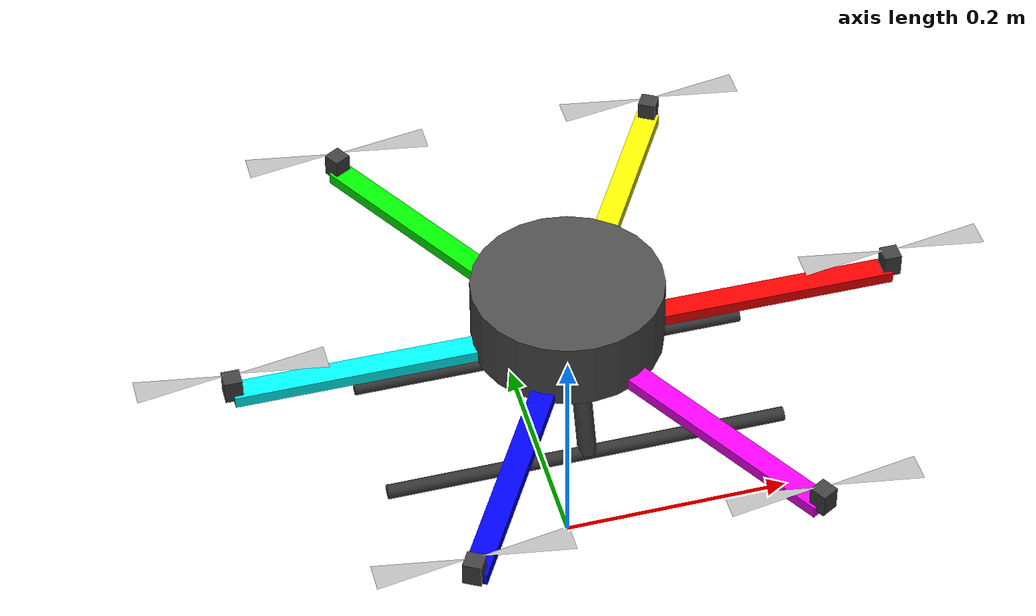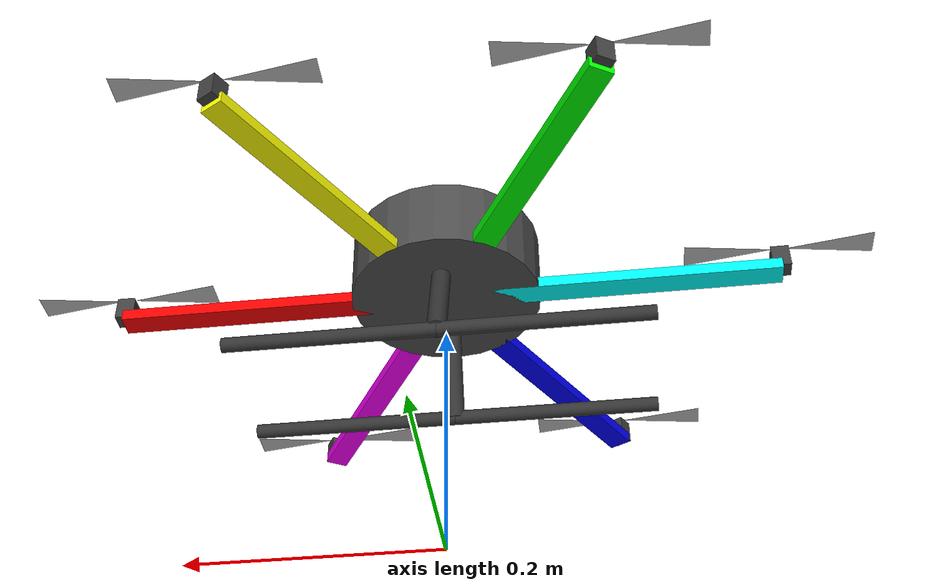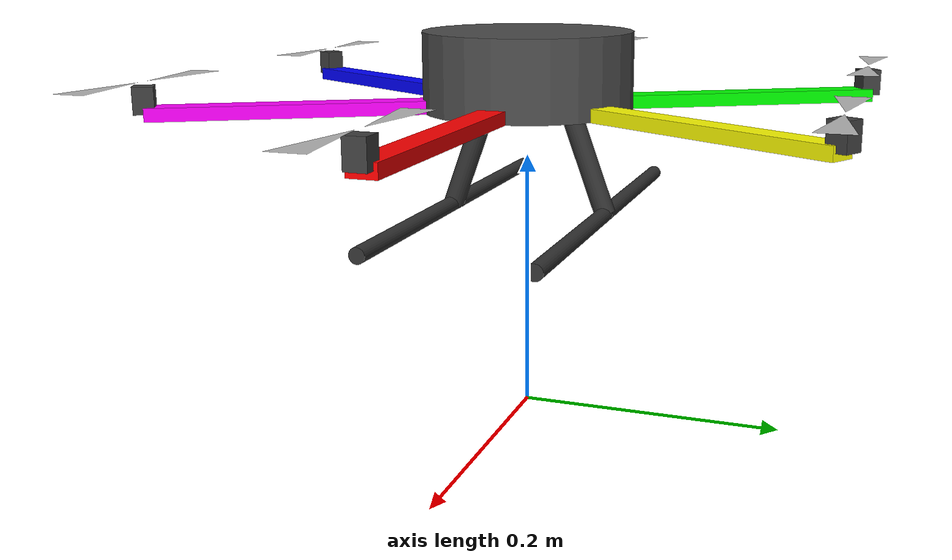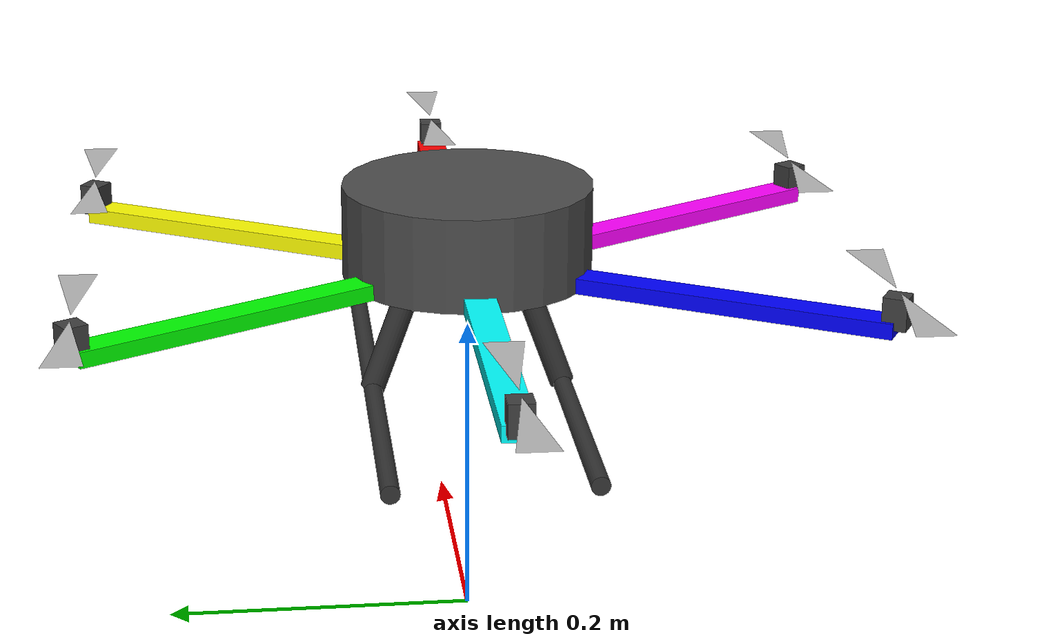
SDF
<?xml version="1.0" encoding="UTF-8"?>
<sdf version='1.9'>
  <model name='ciccio_drone'>
    <pose>0 0 0.24 0 0 0</pose>
    <self_collide>false</self_collide>
    <static>false</static>

    <!-- Link principale -->
    <link name="base_link">
      <inertial>
        <mass>2.35</mass>
        <inertia>
          <ixx>0.015</ixx>
          <ixy>0</ixy>
          <ixz>0</ixz>
          <iyy>0.015</iyy>
          <iyz>0</iyz>
          <izz>0.025</izz>
        </inertia>
      </inertial>

      <!-- CUSTOM LANDING SUPPORT - V-shaped legs with horizontal bars -->
      <!-- Two angled legs on the FRONT and REAR sides,
          connected by four horizontal crossbars (left/right).
          All components are cylindrical for a realistic look. -->

      <!-- FRONT ANGLED LEG -->
      <!-- Starts from body bottom, angled outward to the front -->
      <visual name="landing_leg_front_visual">
        <pose>0 0.045 -0.035 0.349 0 0</pose> <!-- 20° tilt forward (0.349 rad) -->
        <geometry>
          <cylinder>
            <radius>0.008</radius>
            <length>0.10</length>
          </cylinder>
        </geometry>
        <material>
          <ambient>0.1 0.1 0.1 1</ambient>
          <diffuse>0.2 0.2 0.2 1</diffuse>
          <specular>0.3 0.3 0.3 1</specular>
        </material>
      </visual>

      <collision name="landing_leg_front">
        <pose>0 0.045 -0.035 0.349 0 0</pose>
        <geometry>
          <cylinder>
            <radius>0.008</radius>
            <length>0.10</length>
          </cylinder>
        </geometry>
        <surface>
          <contact>
            <ode>
              <min_depth>0.001</min_depth>
              <max_vel>0</max_vel>
            </ode>
          </contact>
          <friction>
            <ode>
              <mu>0.6</mu>
              <mu2>0.6</mu2>
            </ode>
          </friction>
        </surface>
      </collision>

      <!-- REAR ANGLED LEG -->
      <!-- Starts from body bottom, angled outward to the rear -->
      <visual name="landing_leg_rear_visual">
        <pose>0 -0.045 -0.035 -0.349 0 0</pose> <!-- -20° tilt backward -->
        <geometry>
          <cylinder>
            <radius>0.008</radius>
            <length>0.10</length>
          </cylinder>
        </geometry>
        <material>
          <ambient>0.1 0.1 0.1 1</ambient>
          <diffuse>0.2 0.2 0.2 1</diffuse>
          <specular>0.3 0.3 0.3 1</specular>
        </material>
      </visual>

      <collision name="landing_leg_rear">
        <pose>0 -0.045 -0.035 -0.349 0 0</pose>
        <geometry>
          <cylinder>
            <radius>0.008</radius>
            <length>0.10</length>
          </cylinder>
        </geometry>
        <surface>
          <contact>
            <ode>
              <min_depth>0.001</min_depth>
              <max_vel>0</max_vel>
            </ode>
          </contact>
          <friction>
            <ode>
              <mu>0.6</mu>
              <mu2>0.6</mu2>
            </ode>
          </friction>
        </surface>
      </collision>

      <!-- LEFT HORIZONTAL CROSSBAR (FRONT) -->
      <!-- Attached at the front leg endpoint -->
      <visual name="landing_crossbar_left_front_visual">
        <pose>-0.085 0.062 -0.082 0 1.5708 0</pose> <!-- Rotated 90° around Y to be horizontal along X -->
        <geometry>
          <cylinder>
            <radius>0.006</radius>
            <length>0.17</length>
          </cylinder>
        </geometry>
        <material>
          <ambient>0.1 0.1 0.1 1</ambient>
          <diffuse>0.2 0.2 0.2 1</diffuse>
          <specular>0.3 0.3 0.3 1</specular>
        </material>
      </visual>

      <collision name="landing_crossbar_left_front">
        <pose>-0.085 0.062 -0.082 0 1.5708 0</pose>
        <geometry>
          <cylinder>
            <radius>0.006</radius>
            <length>0.17</length>
          </cylinder>
        </geometry>
        <surface>
          <contact>
            <ode>
              <min_depth>0.001</min_depth>
              <max_vel>0</max_vel>
            </ode>
          </contact>
          <friction>
            <ode>
              <mu>0.6</mu>
              <mu2>0.6</mu2>
            </ode>
          </friction>
        </surface>
      </collision>

      <!-- RIGHT HORIZONTAL CROSSBAR (FRONT) -->
      <!-- Attached at the front leg endpoint -->
      <visual name="landing_crossbar_right_front_visual">
        <pose>0.085 0.062 -0.082 0 1.5708 0</pose> <!-- Rotated 90° around Y to be horizontal along X -->
        <geometry>
          <cylinder>
            <radius>0.006</radius>
            <length>0.17</length>
          </cylinder>
        </geometry>
        <material>
          <ambient>0.1 0.1 0.1 1</ambient>
          <diffuse>0.2 0.2 0.2 1</diffuse>
          <specular>0.3 0.3 0.3 1</specular>
        </material>
      </visual>

      <collision name="landing_crossbar_right_front">
        <pose>0.085 0.062 -0.082 0 1.5708 0</pose>
        <geometry>
          <cylinder>
            <radius>0.006</radius>
            <length>0.17</length>
          </cylinder>
        </geometry>
        <surface>
          <contact>
            <ode>
              <min_depth>0.001</min_depth>
              <max_vel>0</max_vel>
            </ode>
          </contact>
          <friction>
            <ode>
              <mu>0.6</mu>
              <mu2>0.6</mu2>
            </ode>
          </friction>
        </surface>
      </collision>

      <!-- LEFT HORIZONTAL CROSSBAR (REAR) -->
      <!-- Attached at the rear leg endpoint -->
      <visual name="landing_crossbar_left_rear_visual">
        <pose>-0.085 -0.062 -0.082 0 1.5708 0</pose> <!-- Rotated 90° around Y to be horizontal along X -->
        <geometry>
          <cylinder>
            <radius>0.006</radius>
            <length>0.17</length>
          </cylinder>
        </geometry>
        <material>
          <ambient>0.1 0.1 0.1 1</ambient>
          <diffuse>0.2 0.2 0.2 1</diffuse>
          <specular>0.3 0.3 0.3 1</specular>
        </material>
      </visual>

      <collision name="landing_crossbar_left_rear">
        <pose>-0.085 -0.062 -0.082 0 1.5708 0</pose>
        <geometry>
          <cylinder>
            <radius>0.006</radius>
            <length>0.17</length>
          </cylinder>
        </geometry>
        <surface>
          <contact>
            <ode>
              <min_depth>0.001</min_depth>
              <max_vel>0</max_vel>
            </ode>
          </contact>
          <friction>
            <ode>
              <mu>0.6</mu>
              <mu2>0.6</mu2>
            </ode>
          </friction>
        </surface>
      </collision>

      <!-- RIGHT HORIZONTAL CROSSBAR (REAR) -->
      <!-- Attached at the rear leg endpoint -->
      <visual name="landing_crossbar_right_rear_visual">
        <pose>0.085 -0.062 -0.082 0 1.5708 0</pose> <!-- Rotated 90° around Y to be horizontal along X -->
        <geometry>
          <cylinder>
            <radius>0.006</radius>
            <length>0.17</length>
          </cylinder>
        </geometry>
        <material>
          <ambient>0.1 0.1 0.1 1</ambient>
          <diffuse>0.2 0.2 0.2 1</diffuse>
          <specular>0.3 0.3 0.3 1</specular>
        </material>
      </visual>

      <collision name="landing_crossbar_right_rear">
        <pose>0.085 -0.062 -0.082 0 1.5708 0</pose>
        <geometry>
          <cylinder>
            <radius>0.006</radius>
            <length>0.17</length>
          </cylinder>
        </geometry>
        <surface>
          <contact>
            <ode>
              <min_depth>0.001</min_depth>
              <max_vel>0</max_vel>
            </ode>
          </contact>
          <friction>
            <ode>
              <mu>0.6</mu>
              <mu2>0.6</mu2>
            </ode>
          </friction>
        </surface>
      </collision>

      <!-- Corpo centrale -->
      <visual name="body_visual">
        <pose>0 0 .025 0 0 3.141592654</pose>
        <geometry>
          <cylinder>
            <radius>0.08</radius>
            <length>0.06</length>
          </cylinder>
        </geometry>
        <material>
          <ambient>0.2 0.2 0.2 1</ambient>
          <diffuse>0.3 0.3 0.3 1</diffuse>
        </material>
      </visual>

      <!-- Collision central body -->
      <collision name="body_collision">
        <pose>0 0 0 0 0 0</pose>
        <geometry>
          <cylinder>
            <radius>0.10</radius>
            <length>0.08</length>
          </cylinder>
        </geometry>
      </collision>

      <!-- Bracci (6 bracci, colori diversi per identificazione) -->
      <!-- Braccio 0: 0° - ROSSO -->
      <visual name="arm0_visual">
        <pose>0.14 0 0 0 0 0</pose>
        <geometry>
          <box>
            <size>0.28 0.02 0.01</size>
          </box>
        </geometry>
        <material>
          <ambient>1 0 0 1</ambient>
          <diffuse>1 0 0 1</diffuse>
        </material>
      </visual>
      <collision name="arm0_collision">
        <pose>0.14 0 0 0 0 0</pose>
        <geometry><box><size>0.28 0.02 0.01</size></box></geometry>
      </collision>

      <!-- Braccio 1: 60° - GIALLO -->
      <visual name="arm1_visual">
        <pose>0.07 0.121 0 0 0 1.0472</pose>
        <geometry>
          <box>
            <size>0.28 0.02 0.01</size>
          </box>
        </geometry>
        <material>
          <ambient>1 1 0 1</ambient>
          <diffuse>1 1 0 1</diffuse>
        </material>
      </visual>
      <collision name="arm1_collision">
        <pose>0.07 0.121 0 0 0 1.0472</pose>
        <geometry><box><size>0.28 0.02 0.01</size></box></geometry>
      </collision>

      <!-- Braccio 2: 120° - VERDE -->
      <visual name="arm2_visual">
        <pose>-0.07 0.121 0 0 0 2.0944</pose>
        <geometry>
          <box>
            <size>0.28 0.02 0.01</size>
          </box>
        </geometry>
        <material>
          <ambient>0 1 0 1</ambient>
          <diffuse>0 1 0 1</diffuse>
        </material>
      </visual>
      <collision name="arm2_collision">
        <pose>-0.07 0.121 0 0 0 2.0944</pose>
        <geometry><box><size>0.28 0.02 0.01</size></box></geometry>
      </collision>

      <!-- Braccio 3: 180° - CIANO -->
      <visual name="arm3_visual">
        <pose>-0.14 0 0 0 0 3.14159</pose>
        <geometry>
          <box>
            <size>0.28 0.02 0.01</size>
          </box>
        </geometry>
        <material>
          <ambient>0 1 1 1</ambient>
          <diffuse>0 1 1 1</diffuse>
        </material>
      </visual>
      <collision name="arm3_collision">
        <pose>-0.14 0 0 0 0 3.14159</pose>
        <geometry><box><size>0.28 0.02 0.01</size></box></geometry>
      </collision>

      <!-- Braccio 4: 240° - BLU -->
      <visual name="arm4_visual">
        <pose>-0.07 -0.121 0 0 0 -2.0944</pose>
        <geometry>
          <box>
            <size>0.28 0.02 0.01</size>
          </box>
        </geometry>
        <material>
          <ambient>0 0 1 1</ambient>
          <diffuse>0 0 1 1</diffuse>
        </material>
      </visual>
      <collision name="arm4_collision">
        <pose>-0.07 -0.121 0 0 0 -2.0944</pose>
        <geometry><box><size>0.28 0.02 0.01</size></box></geometry>
      </collision>

      <!-- Braccio 5: 300° - MAGENTA -->
      <visual name="arm5_visual">
        <pose>0.07 -0.121 0 0 0 -1.0472</pose>
        <geometry>
          <box>
            <size>0.28 0.02 0.01</size>
          </box>
        </geometry>
        <material>
          <ambient>1 0 1 1</ambient>
          <diffuse>1 0 1 1</diffuse>
        </material>
      </visual>
      <collision name="arm5_collision">
        <pose>0.07 -0.121 0 0 0 -1.0472</pose>
        <geometry><box><size>0.28 0.02 0.01</size></box></geometry>
      </collision>

      <!-- COLLEGAMENTI BRACCI-ROTORI                 -->
      <!-- Small vertical links connecting arm tips   -->
      <!-- to rotor bases (box geometry)              -->

      <!-- Link 0: Arm tip → Rotor 0 -->
      <visual name="arm_rotor_link_0_visual">
        <pose>0.28 0.0 0.01 0 0 0</pose>
        <geometry>
          <box>
            <size>0.015 0.015 0.02</size>
          </box>
        </geometry>
        <material>
          <ambient>0.15 0.15 0.15 1</ambient>
          <diffuse>0.25 0.25 0.25 1</diffuse>
          <specular>0.2 0.2 0.2 1</specular>
        </material>
      </visual>

      <collision name="arm_rotor_link_0_collision">
        <pose>0.28 0.0 0.01 0 0 0</pose>
        <geometry>
          <box>
            <size>0.015 0.015 0.02</size>
          </box>
        </geometry>
      </collision>

      <!-- Link 1: Arm tip → Rotor 1 -->
      <visual name="arm_rotor_link_1_visual">
        <pose>0.14 0.242 0.01 0 0 1.0472</pose>
        <geometry>
          <box>
            <size>0.015 0.015 0.02</size>
          </box>
        </geometry>
        <material>
          <ambient>0.15 0.15 0.15 1</ambient>
          <diffuse>0.25 0.25 0.25 1</diffuse>
          <specular>0.2 0.2 0.2 1</specular>
        </material>
      </visual>

      <collision name="arm_rotor_link_1_collision">
        <pose>0.14 0.242 0.01 0 0 1.0472</pose>
        <geometry>
          <box>
            <size>0.015 0.015 0.02</size>
          </box>
        </geometry>
      </collision>

      <!-- Link 2: Arm tip → Rotor 2 -->
      <visual name="arm_rotor_link_2_visual">
        <pose>-0.14 0.242 0.01 0 0 2.0944</pose>
        <geometry>
          <box>
            <size>0.015 0.015 0.02</size>
          </box>
        </geometry>
        <material>
          <ambient>0.15 0.15 0.15 1</ambient>
          <diffuse>0.25 0.25 0.25 1</diffuse>
          <specular>0.2 0.2 0.2 1</specular>
        </material>
      </visual>

      <collision name="arm_rotor_link_2_collision">
        <pose>-0.14 0.242 0.01 0 0 2.0944</pose>
        <geometry>
          <box>
            <size>0.015 0.015 0.02</size>
          </box>
        </geometry>
      </collision>

      <!-- Link 3: Arm tip → Rotor 3 -->
      <visual name="arm_rotor_link_3_visual">
        <pose>-0.28 0.0 0.01 0 0 3.14159</pose>
        <geometry>
          <box>
            <size>0.015 0.015 0.02</size>
          </box>
        </geometry>
        <material>
          <ambient>0.15 0.15 0.15 1</ambient>
          <diffuse>0.25 0.25 0.25 1</diffuse>
          <specular>0.2 0.2 0.2 1</specular>
        </material>
      </visual>

      <collision name="arm_rotor_link_3_collision">
        <pose>-0.28 0.0 0.01 0 0 3.14159</pose>
        <geometry>
          <box>
            <size>0.015 0.015 0.02</size>
          </box>
        </geometry>
      </collision>

      <!-- Link 4: Arm tip → Rotor 4 -->
      <visual name="arm_rotor_link_4_visual">
        <pose>-0.14 -0.242 0.01 0 0 -2.0944</pose>
        <geometry>
          <box>
            <size>0.015 0.015 0.02</size>
          </box>
        </geometry>
        <material>
          <ambient>0.15 0.15 0.15 1</ambient>
          <diffuse>0.25 0.25 0.25 1</diffuse>
          <specular>0.2 0.2 0.2 1</specular>
        </material>
      </visual>

      <collision name="arm_rotor_link_4_collision">
        <pose>-0.14 -0.242 0.01 0 0 -2.0944</pose>
        <geometry>
          <box>
            <size>0.015 0.015 0.02</size>
          </box>
        </geometry>
      </collision>

      <!-- Link 5: Arm tip → Rotor 5 -->
      <visual name="arm_rotor_link_5_visual">
        <pose>0.14 -0.242 0.01 0 0 -1.0472</pose>
        <geometry>
          <box>
            <size>0.015 0.015 0.02</size>
          </box>
        </geometry>
        <material>
          <ambient>0.15 0.15 0.15 1</ambient>
          <diffuse>0.25 0.25 0.25 1</diffuse>
          <specular>0.2 0.2 0.2 1</specular>
        </material>
      </visual>

      <collision name="arm_rotor_link_5_collision">
        <pose>0.14 -0.242 0.01 0 0 -1.0472</pose>
        <geometry>
          <box>
            <size>0.015 0.015 0.02</size>
          </box>
        </geometry>
      </collision>

      <!-- SENSORI -->
      <sensor name="imu_sensor" type="imu">
        <always_on>1</always_on>
        <update_rate>250</update_rate>
        <imu>
          <angular_velocity>
            <x><noise type="gaussian"><mean>0.0</mean><stddev>0.0008726646</stddev></noise></x>
            <y><noise type="gaussian"><mean>0.0</mean><stddev>0.0008726646</stddev></noise></y>
            <z><noise type="gaussian"><mean>0.0</mean><stddev>0.0008726646</stddev></noise></z>
          </angular_velocity>
          <linear_acceleration>
            <x><noise type="gaussian"><mean>0.0</mean><stddev>0.00637</stddev></noise></x>
            <y><noise type="gaussian"><mean>0.0</mean><stddev>0.00637</stddev></noise></y>
            <z><noise type="gaussian"><mean>0.0</mean><stddev>0.00686</stddev></noise></z>
          </linear_acceleration>
        </imu>
      </sensor>

      <sensor name="air_pressure_sensor" type="air_pressure">
        <always_on>1</always_on>
        <update_rate>50</update_rate>
        <air_pressure>
          <pressure><noise type="gaussian"><mean>0</mean><stddev>3</stddev></noise></pressure>
        </air_pressure>
      </sensor>

      <sensor name="magnetometer_sensor" type="magnetometer">
        <always_on>1</always_on>
        <update_rate>100</update_rate>
        <magnetometer>
          <x><noise type="gaussian"><stddev>0.0001</stddev></noise></x>
          <y><noise type="gaussian"><stddev>0.0001</stddev></noise></y>
          <z><noise type="gaussian"><stddev>0.0001</stddev></noise></z>
        </magnetometer>
      </sensor>

      <sensor name="navsat_sensor" type="navsat">
        <always_on>1</always_on>
        <update_rate>30</update_rate>
      </sensor>
    </link>

    <!-- ROTORI (posizioni scalate × 0.28)          -->
    <!-- Airframe: normalizzato (R=1.0)             -->
    <!-- SDF: fisico (R=0.28m)                      -->

    <!-- Rotore 0: (1.0, 0.0) → (0.28, 0.0) - CCW -->
    <link name="rotor_0">
      <pose>0.28 0.0 0.02 0 0 0</pose>
      <inertial>
        <mass>0.016076923076923075</mass>
        <inertia>
          <ixx>3.8464910483993325e-07</ixx>
          <iyy>2.6115851691700804e-05</iyy>
          <izz>2.649858234714004e-05</izz>
        </inertia>
      </inertial>
      <visual name="rotor_0_visual">
        <pose>0 0 0.003 0 0 0</pose>
        <geometry>
          <mesh>
            <uri>model://ciccio_drone/meshes/propeller.dae</uri>
            <scale>1 1 1</scale>
          </mesh>
        </geometry>
      </visual>
      <collision name="rotor_0_collision">
        <geometry>
          <cylinder>
            <radius>0.08</radius>
            <length>0.002</length>
          </cylinder>
        </geometry>
      </collision>
    </link>

    <joint name="rotor_0_joint" type="revolute">
      <parent>base_link</parent>
      <child>rotor_0</child>
      <axis>
        <xyz>0 0 1</xyz>
        <limit><lower>-1e+16</lower><upper>1e+16</upper></limit>
      </axis>
    </joint>

    <!-- Rotore 1: (0.5, 0.866) → (0.14, 0.242) - CW -->
    <link name="rotor_1">
      <pose>0.14 0.242 0.02 0 0 0</pose>
      <inertial>
        <mass>0.016076923076923075</mass>
        <inertia>
          <ixx>3.8464910483993325e-07</ixx>
          <iyy>2.6115851691700804e-05</iyy>
          <izz>2.649858234714004e-05</izz>
        </inertia>
      </inertial>
      <visual name="rotor_1_visual">
        <pose>0 0 0.003 0 0 0</pose>
        <geometry>
          <mesh>
            <uri>model://ciccio_drone/meshes/propeller.dae</uri>
            <scale>1 1 1</scale>
          </mesh>
        </geometry>
      </visual>
      <collision name="rotor_1_collision">
        <geometry>
          <cylinder>
            <radius>0.08</radius>
            <length>0.002</length>
          </cylinder>
        </geometry>
      </collision>
    </link>

    <joint name="rotor_1_joint" type="revolute">
      <parent>base_link</parent>
      <child>rotor_1</child>
      <axis>
        <xyz>0 0 1</xyz>
        <limit><lower>-1e+16</lower><upper>1e+16</upper></limit>
      </axis>
    </joint>

    <!-- Rotore 2: (-0.5, 0.866) → (-0.14, 0.242) - CCW -->
    <link name="rotor_2">
      <pose>-0.14 0.242 0.02 0 0 0</pose>
      <inertial>
        <mass>0.016076923076923075</mass>
        <inertia>
          <ixx>3.8464910483993325e-07</ixx>
          <iyy>2.6115851691700804e-05</iyy>
          <izz>2.649858234714004e-05</izz>
        </inertia>
      </inertial>
      <visual name="rotor_2_visual">
        <pose>0 0 0.003 0 0 0</pose>
        <geometry>
          <mesh>
            <uri>model://ciccio_drone/meshes/propeller.dae</uri>
            <scale>1 1 1</scale>
          </mesh>
        </geometry>
      </visual>
      <collision name="rotor_2_collision">
        <geometry>
          <cylinder>
            <radius>0.08</radius>
            <length>0.002</length>
          </cylinder>
        </geometry>
      </collision>
    </link>

    <joint name="rotor_2_joint" type="revolute">
      <parent>base_link</parent>
      <child>rotor_2</child>
      <axis>
        <xyz>0 0 1</xyz>
        <limit><lower>-1e+16</lower><upper>1e+16</upper></limit>
      </axis>
    </joint>

    <!-- Rotore 3: (-1.0, 0.0) → (-0.28, 0.0) - CW -->
    <link name="rotor_3">
      <pose>-0.28 0.0 0.02 0 0 0</pose>
      <inertial>
        <mass>0.016076923076923075</mass>
        <inertia>
          <ixx>3.8464910483993325e-07</ixx>
          <iyy>2.6115851691700804e-05</iyy>
          <izz>2.649858234714004e-05</izz>
        </inertia>
      </inertial>
      <visual name="rotor_3_visual">
        <pose>0 0 0.003 0 0 0</pose>
        <geometry>
          <mesh>
            <uri>model://ciccio_drone/meshes/propeller.dae</uri>
            <scale>1 1 1</scale>
          </mesh>
        </geometry>
      </visual>
      <collision name="rotor_3_collision">
        <geometry>
          <cylinder>
            <radius>0.08</radius>
            <length>0.002</length>
          </cylinder>
        </geometry>
      </collision>
    </link>

    <joint name="rotor_3_joint" type="revolute">
      <parent>base_link</parent>
      <child>rotor_3</child>
      <axis>
        <xyz>0 0 1</xyz>
        <limit><lower>-1e+16</lower><upper>1e+16</upper></limit>
      </axis>
    </joint>

    <!-- Rotore 4: (-0.5, -0.866) → (-0.14, -0.242) - CCW -->
    <link name="rotor_4">
      <pose>-0.14 -0.242 0.02 0 0 0</pose>
      <inertial>
        <mass>0.016076923076923075</mass>
        <inertia>
          <ixx>3.8464910483993325e-07</ixx>
          <iyy>2.6115851691700804e-05</iyy>
          <izz>2.649858234714004e-05</izz>
        </inertia>
      </inertial>
      <visual name="rotor_4_visual">
        <pose>0 0 0.003 0 0 0</pose>
        <geometry>
          <mesh>
            <uri>model://ciccio_drone/meshes/propeller.dae</uri>
            <scale>1 1 1</scale>
          </mesh>
        </geometry>
      </visual>
      <collision name="rotor_4_collision">
        <geometry>
          <cylinder>
            <radius>0.08</radius>
            <length>0.002</length>
          </cylinder>
        </geometry>
      </collision>
    </link>

    <joint name="rotor_4_joint" type="revolute">
      <parent>base_link</parent>
      <child>rotor_4</child>
      <axis>
        <xyz>0 0 1</xyz>
        <limit><lower>-1e+16</lower><upper>1e+16</upper></limit>
      </axis>
    </joint>

    <!-- Rotore 5: (0.5, -0.866) → (0.14, -0.242) - CW -->
    <link name="rotor_5">
      <pose>0.14 -0.242 0.02 0 0 0</pose>
      <inertial>
        <mass>0.016076923076923075</mass>
        <inertia>
          <ixx>3.8464910483993325e-07</ixx>
          <iyy>2.6115851691700804e-05</iyy>
          <izz>2.649858234714004e-05</izz>
        </inertia>
      </inertial>
      <visual name="rotor_5_visual">
        <pose>0 0 0.003 0 0 0</pose>
        <geometry>
          <mesh>
            <uri>model://ciccio_drone/meshes/propeller.dae</uri>
            <scale>1 1 1</scale>
          </mesh>
        </geometry>
      </visual>
      <collision name="rotor_5_collision">
        <geometry>
          <cylinder>
            <radius>0.08</radius>
            <length>0.002</length>
          </cylinder>
        </geometry>
      </collision>
    </link>

    <joint name="rotor_5_joint" type="revolute">
      <parent>base_link</parent>
      <child>rotor_5</child>
      <axis>
        <xyz>0 0 1</xyz>
        <limit><lower>-1e+16</lower><upper>1e+16</upper></limit>
      </axis>
    </joint>

    <!-- PLUGIN MOTORI                              -->

    <!-- M0 - CCW -->
    <plugin filename="gz-sim-multicopter-motor-model-system"
            name="gz::sim::systems::MulticopterMotorModel">
      <jointName>rotor_0_joint</jointName>
      <linkName>rotor_0</linkName>
      <turningDirection>ccw</turningDirection>
      <timeConstantUp>0.0125</timeConstantUp>
      <timeConstantDown>0.025</timeConstantDown>
      <maxRotVelocity>1000.0</maxRotVelocity>
      <motorConstant>8.54858e-06</motorConstant>
      <momentConstant>0.016</momentConstant>
      <commandSubTopic>command/motor_speed</commandSubTopic>
      <motorNumber>0</motorNumber>
      <rotorDragCoefficient>8.06428e-05</rotorDragCoefficient>
      <rollingMomentCoefficient>1e-06</rollingMomentCoefficient>
      <rotorVelocitySlowdownSim>10</rotorVelocitySlowdownSim>
      <motorType>velocity</motorType>
    </plugin>

    <!-- M1 - CW -->
    <plugin filename="gz-sim-multicopter-motor-model-system"
            name="gz::sim::systems::MulticopterMotorModel">
      <jointName>rotor_1_joint</jointName>
      <linkName>rotor_1</linkName>
      <turningDirection>cw</turningDirection>
      <timeConstantUp>0.0125</timeConstantUp>
      <timeConstantDown>0.025</timeConstantDown>
      <maxRotVelocity>1000.0</maxRotVelocity>
      <motorConstant>8.54858e-06</motorConstant>
      <momentConstant>0.016</momentConstant>
      <commandSubTopic>command/motor_speed</commandSubTopic>
      <motorNumber>1</motorNumber>
      <rotorDragCoefficient>8.06428e-05</rotorDragCoefficient>
      <rollingMomentCoefficient>1e-06</rollingMomentCoefficient>
      <rotorVelocitySlowdownSim>10</rotorVelocitySlowdownSim>
      <motorType>velocity</motorType>
    </plugin>

    <!-- M2 - CCW -->
    <plugin filename="gz-sim-multicopter-motor-model-system"
            name="gz::sim::systems::MulticopterMotorModel">
      <jointName>rotor_2_joint</jointName>
      <linkName>rotor_2</linkName>
      <turningDirection>ccw</turningDirection>
      <timeConstantUp>0.0125</timeConstantUp>
      <timeConstantDown>0.025</timeConstantDown>
      <maxRotVelocity>1000.0</maxRotVelocity>
      <motorConstant>8.54858e-06</motorConstant>
      <momentConstant>0.016</momentConstant>
      <commandSubTopic>command/motor_speed</commandSubTopic>
      <motorNumber>2</motorNumber>
      <rotorDragCoefficient>8.06428e-05</rotorDragCoefficient>
      <rollingMomentCoefficient>1e-06</rollingMomentCoefficient>
      <rotorVelocitySlowdownSim>10</rotorVelocitySlowdownSim>
      <motorType>velocity</motorType>
    </plugin>

    <!-- M3 - CW -->
    <plugin filename="gz-sim-multicopter-motor-model-system"
            name="gz::sim::systems::MulticopterMotorModel">
      <jointName>rotor_3_joint</jointName>
      <linkName>rotor_3</linkName>
      <turningDirection>cw</turningDirection>
      <timeConstantUp>0.0125</timeConstantUp>
      <timeConstantDown>0.025</timeConstantDown>
      <maxRotVelocity>1000.0</maxRotVelocity>
      <motorConstant>8.54858e-06</motorConstant>
      <momentConstant>0.016</momentConstant>
      <commandSubTopic>command/motor_speed</commandSubTopic>
      <motorNumber>3</motorNumber>
      <rotorDragCoefficient>8.06428e-05</rotorDragCoefficient>
      <rollingMomentCoefficient>1e-06</rollingMomentCoefficient>
      <rotorVelocitySlowdownSim>10</rotorVelocitySlowdownSim>
      <motorType>velocity</motorType>
    </plugin>

    <!-- M4 - CCW -->
    <plugin filename="gz-sim-multicopter-motor-model-system"
            name="gz::sim::systems::MulticopterMotorModel">
      <jointName>rotor_4_joint</jointName>
      <linkName>rotor_4</linkName>
      <turningDirection>ccw</turningDirection>
      <timeConstantUp>0.0125</timeConstantUp>
      <timeConstantDown>0.025</timeConstantDown>
      <maxRotVelocity>1000.0</maxRotVelocity>
      <motorConstant>8.54858e-06</motorConstant>
      <momentConstant>0.016</momentConstant>
      <commandSubTopic>command/motor_speed</commandSubTopic>
      <motorNumber>4</motorNumber>
      <rotorDragCoefficient>8.06428e-05</rotorDragCoefficient>
      <rollingMomentCoefficient>1e-06</rollingMomentCoefficient>
      <rotorVelocitySlowdownSim>10</rotorVelocitySlowdownSim>
      <motorType>velocity</motorType>
    </plugin>

    <!-- M5 - CW -->
    <plugin filename="gz-sim-multicopter-motor-model-system"
            name="gz::sim::systems::MulticopterMotorModel">
      <jointName>rotor_5_joint</jointName>
      <linkName>rotor_5</linkName>
      <turningDirection>cw</turningDirection>
      <timeConstantUp>0.0125</timeConstantUp>
      <timeConstantDown>0.025</timeConstantDown>
      <maxRotVelocity>1000.0</maxRotVelocity>
      <motorConstant>8.54858e-06</motorConstant>
      <momentConstant>0.016</momentConstant>
      <commandSubTopic>command/motor_speed</commandSubTopic>
      <motorNumber>5</motorNumber>
      <rotorDragCoefficient>8.06428e-05</rotorDragCoefficient>
      <rollingMomentCoefficient>1e-06</rollingMomentCoefficient>
      <rotorVelocitySlowdownSim>10</rotorVelocitySlowdownSim>
      <motorType>velocity</motorType>
    </plugin>

  </model>
</sdf>
